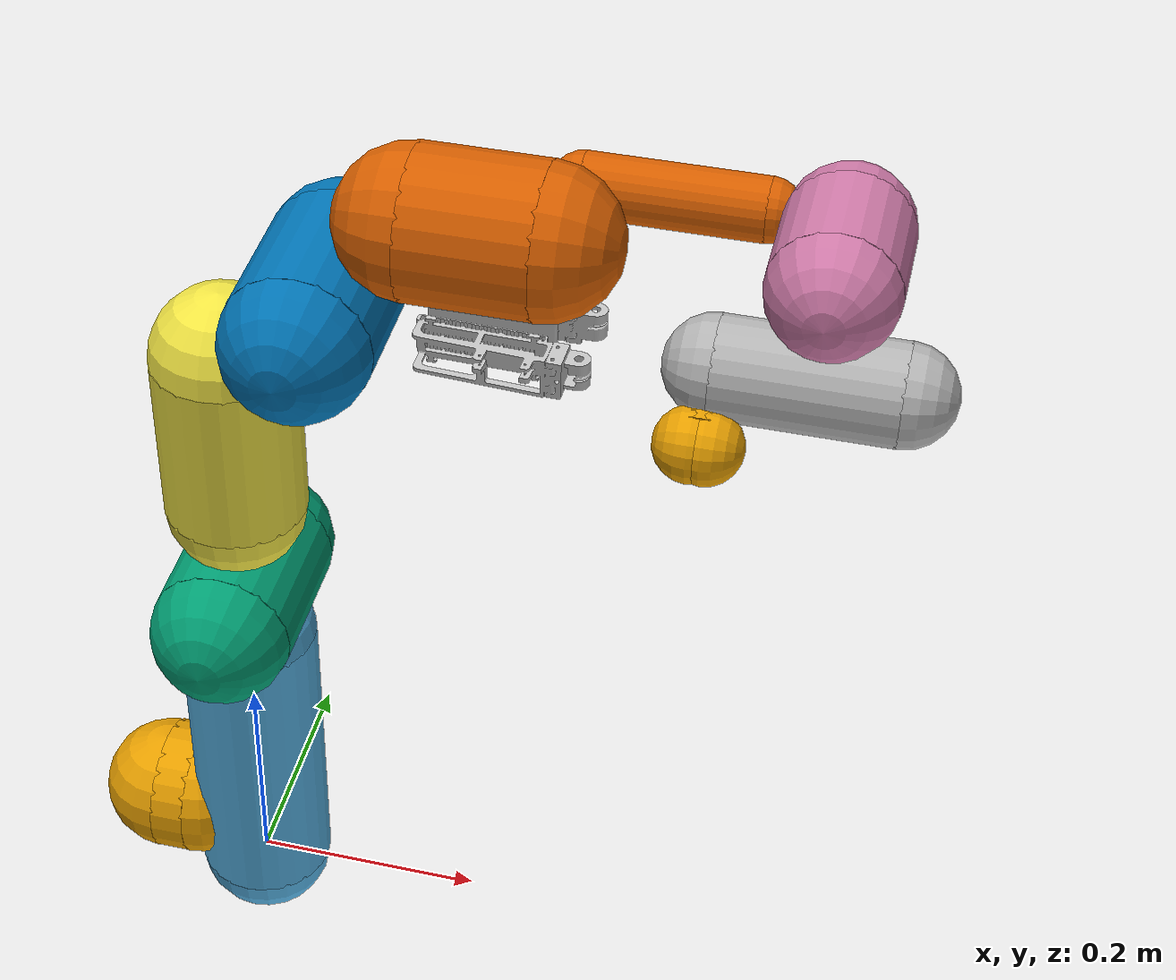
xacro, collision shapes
<?xml version="1.0" encoding="utf-8"?>
<robot xmlns:xacro="http://www.ros.org/wiki/xacro" name="franka_vf">
  <!-- Franka arm -->
  <xacro:include filename="$(find franka_description)/robots/panda_arm.xacro"/>
  <!-- Variable Friction Hand -->
  <xacro:include filename="$(find vf-hand_description)/robots/vf_hand.xacro"/>
  <xacro:panda_arm />
  <!-- Attach hand to the end of the arm -->
  <xacro:vf_hand rpy="0 0 0" connected_to="panda_link8"/>
</robot>

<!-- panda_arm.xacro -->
<robot xmlns:xacro="http://www.ros.org/wiki/xacro" name="panda">
  <!-- safety_distance: Minimum safety distance in [m] by which the collision volumes are expanded and which is enforced during robot motions -->
  <!-- arm_id: Namespace of the panda arm. Serves to differentiate between arms in case of multiple instances. -->
  <xacro:macro name="panda_arm" params="arm_id:='panda' description_pkg:='franka_description' connected_to:='' xyz:='0 0 0' rpy:='0 0 0' safety_distance:=0">
    <xacro:unless value="${not connected_to}">
      <joint name="${arm_id}_joint_${connected_to}" type="fixed">
        <parent link="${connected_to}"/>
        <child link="${arm_id}_link0"/>
        <origin rpy="${rpy}" xyz="${xyz}"/>
      </joint>
    </xacro:unless>
    <link name="${arm_id}_link0">
      <visual>
        <geometry>
          <mesh filename="package://${description_pkg}/meshes/visual/link0.dae"/>
        </geometry>
      </visual>
      <collision>
        <origin xyz="-0.075 0 0.06" rpy="0 ${pi/2} 0"/>
        <geometry>
          <cylinder radius="${0.06+safety_distance}" length="0.03" />
        </geometry>
      </collision>
      <collision>
        <origin xyz="-0.06 0 0.06" rpy="0 0 0"/>
        <geometry>
          <sphere radius="${0.06+safety_distance}" />
        </geometry>
      </collision>
      <collision>
        <origin xyz="-0.09 0 0.06" rpy="0 0 0"/>
        <geometry>
          <sphere radius="${0.06+safety_distance}" />
        </geometry>
      </collision>
    </link>
    <link name="${arm_id}_link1">
      <visual>
        <geometry>
          <mesh filename="package://${description_pkg}/meshes/visual/link1.dae"/>
        </geometry>
      </visual>
      <collision>
        <origin xyz="0 0 -0.1915" rpy="0 0 0"/>
        <geometry>
          <cylinder radius="${0.06+safety_distance}" length="0.2830" />
        </geometry>
      </collision>
      <collision>
        <origin xyz="0 0 -0.333" rpy="0 0 0"/>
        <geometry>
          <sphere radius="${0.06+safety_distance}" />
        </geometry>
      </collision>
      <collision>
        <origin xyz="0 0 -0.05" rpy="0 0 0"/>
        <geometry>
          <sphere radius="${0.06+safety_distance}" />
        </geometry>
      </collision>
    </link>
    <joint name="${arm_id}_joint1" type="revolute">
      <safety_controller k_position="100.0" k_velocity="40.0" soft_lower_limit="-2.8973" soft_upper_limit="2.8973"/>
      <origin rpy="0 0 0" xyz="0 0 0.333"/>
      <parent link="${arm_id}_link0"/>
      <child link="${arm_id}_link1"/>
      <axis xyz="0 0 1"/>
      <limit effort="87" lower="-2.8973" upper="2.8973" velocity="2.1750"/>
    </joint>
    <link name="${arm_id}_link2">
      <visual>
        <geometry>
          <mesh filename="package://${description_pkg}/meshes/visual/link2.dae"/>
        </geometry>
      </visual>
      <collision>
        <origin xyz="0 0 0" rpy="0 0 0"/>
        <geometry>
          <cylinder radius="${0.06+safety_distance}" length="0.12" />
        </geometry>
      </collision>
      <collision>
        <origin xyz="0 0 -0.06" rpy="0 0 0"/>
        <geometry>
          <sphere radius="${0.06+safety_distance}" />
        </geometry>
      </collision>
      <collision>
        <origin xyz="0 0 0.06" rpy="0 0 0"/>
        <geometry>
          <sphere radius="${0.06+safety_distance}" />
        </geometry>
      </collision>
    </link>
    <joint name="${arm_id}_joint2" type="revolute">
      <safety_controller k_position="100.0" k_velocity="40.0" soft_lower_limit="-1.7628" soft_upper_limit="1.7628"/>
      <origin rpy="${-pi/2} 0 0" xyz="0 0 0"/>
      <parent link="${arm_id}_link1"/>
      <child link="${arm_id}_link2"/>
      <axis xyz="0 0 1"/>
      <limit effort="87" lower="-1.7628" upper="1.7628" velocity="2.1750"/>
    </joint>
    <link name="${arm_id}_link3">
      <visual>
        <geometry>
          <mesh filename="package://${description_pkg}/meshes/visual/link3.dae"/>
        </geometry>
      </visual>
      <collision>
        <origin xyz="0 0 -0.145" rpy="0 0 0"/>
        <geometry>
          <cylinder radius="${0.06+safety_distance}" length="0.15" />
        </geometry>
      </collision>
      <collision>
        <origin xyz="0 0 -0.22" rpy="0 0 0"/>
        <geometry>
          <sphere radius="${0.06+safety_distance}" />
        </geometry>
      </collision>
      <collision>
        <origin xyz="0 0 -0.07" rpy="0 0 0"/>
        <geometry>
          <sphere radius="${0.06+safety_distance}" />
        </geometry>
      </collision>
    </link>
    <joint name="${arm_id}_joint3" type="revolute">
      <safety_controller k_position="100.0" k_velocity="40.0" soft_lower_limit="-2.8973" soft_upper_limit="2.8973"/>
      <origin rpy="${pi/2} 0 0" xyz="0 -0.316 0"/>
      <parent link="${arm_id}_link2"/>
      <child link="${arm_id}_link3"/>
      <axis xyz="0 0 1"/>
      <limit effort="87" lower="-2.8973" upper="2.8973" velocity="2.1750"/>
    </joint>
    <link name="${arm_id}_link4">
      <visual>
        <geometry>
          <mesh filename="package://${description_pkg}/meshes/visual/link4.dae"/>
        </geometry>
      </visual>
      <collision>
        <origin xyz="0 0 0" rpy="0 0 0"/>
        <geometry>
          <cylinder radius="${0.06+safety_distance}" length="0.12" />
        </geometry>
      </collision>
      <collision>
        <origin xyz="0 0 0.06" rpy="0 0 0"/>
        <geometry>
          <sphere radius="${0.06+safety_distance}" />
        </geometry>
      </collision>
      <collision>
        <origin xyz="0 0 -0.06" rpy="0 0 0"/>
        <geometry>
          <sphere radius="${0.06+safety_distance}" />
        </geometry>
      </collision>
    </link>
    <joint name="${arm_id}_joint4" type="revolute">
      <safety_controller k_position="100.0" k_velocity="40.0" soft_lower_limit="-3.0718" soft_upper_limit="-0.0698"/>
      <origin rpy="${pi/2} 0 0" xyz="0.0825 0 0"/>
      <parent link="${arm_id}_link3"/>
      <child link="${arm_id}_link4"/>
      <axis xyz="0 0 1"/>
      <limit effort="87" lower="-3.0718" upper="-0.0698" velocity="2.1750"/>
    </joint>
    <link name="${arm_id}_link5">
      <visual>
        <geometry>
          <mesh filename="package://${description_pkg}/meshes/visual/link5.dae"/>
        </geometry>
      </visual>
      <collision>
        <origin xyz="0 0 -0.26" rpy="0 0 0"/>
        <geometry>
          <cylinder radius="${0.06+safety_distance}" length="0.1" />
        </geometry>
      </collision>
      <collision>
        <origin xyz="0 0 -0.31" rpy="0 0 0"/>
        <geometry>
          <sphere radius="${0.06+safety_distance}" />
        </geometry>
      </collision>
      <collision>
        <origin xyz="0 0 -0.21" rpy="0 0 0"/>
        <geometry>
          <sphere radius="${0.06+safety_distance}" />
        </geometry>
      </collision>
      <collision>
        <origin xyz="0 0.08 -0.13" rpy="0 0 0"/>
        <geometry>
          <cylinder radius="${0.025+safety_distance}" length="0.14" />
        </geometry>
      </collision>
      <collision>
        <origin xyz="0 0.08 -0.06" rpy="0 0 0"/>
        <geometry>
          <sphere radius="${0.025+safety_distance}" />
        </geometry>
      </collision>
      <collision>
        <origin xyz="0 0.08 -0.20" rpy="0 0 0"/>
        <geometry>
          <sphere radius="${0.025+safety_distance}" />
        </geometry>
      </collision>

    </link>
    <joint name="${arm_id}_joint5" type="revolute">
      <safety_controller k_position="100.0" k_velocity="40.0" soft_lower_limit="-2.8973" soft_upper_limit="2.8973"/>
      <origin rpy="${-pi/2} 0 0" xyz="-0.0825 0.384 0"/>
      <parent link="${arm_id}_link4"/>
      <child link="${arm_id}_link5"/>
      <axis xyz="0 0 1"/>
      <limit effort="12" lower="-2.8973" upper="2.8973" velocity="2.6100"/>
    </joint>
    <link name="${arm_id}_link6">
      <visual>
        <geometry>
          <mesh filename="package://${description_pkg}/meshes/visual/link6.dae"/>
        </geometry>
      </visual>
      <collision>
        <origin xyz="0 0 -0.03" rpy="0 0 0"/>
        <geometry>
          <cylinder radius="${0.05+safety_distance}" length="0.08" />
        </geometry>
      </collision>
      <collision>
        <origin xyz="0 0 0.01" rpy="0 0 0"/>
        <geometry>
          <sphere radius="${0.05+safety_distance}" />
        </geometry>
      </collision>
      <collision>
        <origin xyz="0 0 -0.07" rpy="0 0 0"/>
        <geometry>
          <sphere radius="${0.05+safety_distance}" />
        </geometry>
      </collision>
    </link>
    <joint name="${arm_id}_joint6" type="revolute">
      <safety_controller k_position="100.0" k_velocity="40.0" soft_lower_limit="-0.0175" soft_upper_limit="3.7525"/>
      <origin rpy="${pi/2} 0 0" xyz="0 0 0"/>
      <parent link="${arm_id}_link5"/>
      <child link="${arm_id}_link6"/>
      <axis xyz="0 0 1"/>
      <limit effort="12" lower="-0.0175" upper="3.7525" velocity="2.6100"/>
    </joint>
    <link name="${arm_id}_link7">
      <visual>
        <geometry>
          <mesh filename="package://${description_pkg}/meshes/visual/link7.dae"/>
        </geometry>
      </visual>
      <collision>
        <origin xyz="0 0 0.01" rpy="0 0 0"/>
        <geometry>
          <cylinder radius="${0.04+safety_distance}" length="0.14" />
        </geometry>
      </collision>
      <collision>
        <origin xyz="0 0 0.08" rpy="0 0 0"/>
        <geometry>
          <sphere radius="${0.04+safety_distance}"  />
        </geometry>
      </collision>
      <collision>
        <origin xyz="0 0 -0.06" rpy="0 0 0"/>
        <geometry>
          <sphere radius="${0.04+safety_distance}"  />
        </geometry>
      </collision>
    </link>
    <joint name="${arm_id}_joint7" type="revolute">
      <safety_controller k_position="100.0" k_velocity="40.0" soft_lower_limit="-2.8973" soft_upper_limit="2.8973"/>
      <origin rpy="${pi/2} 0 0" xyz="0.088 0 0"/>
      <parent link="${arm_id}_link6"/>
      <child link="${arm_id}_link7"/>
      <axis xyz="0 0 1"/>
      <limit effort="12" lower="-2.8973" upper="2.8973" velocity="2.6100"/>
    </joint>
    <link name="${arm_id}_link8">
      <collision>
        <origin xyz="0.0424 0.0424 -0.0250" rpy="${pi} ${pi/2} ${pi/2}"/>
        <geometry>
          <cylinder radius="${0.03+safety_distance}"  length="0.01" />
        </geometry>
      </collision>
      <collision>
        <origin xyz="0.0424 0.0424 -0.02" rpy="0 0 0"/>
        <geometry>
          <sphere radius="${0.03+safety_distance}"  />
        </geometry>
      </collision>
      <collision>
        <origin xyz="0.0424 0.0424 -0.03" rpy="0 0 0"/>
        <geometry>
          <sphere radius="${0.03+safety_distance}"  />
        </geometry>
      </collision>
    </link>
    <joint name="${arm_id}_joint8" type="fixed">
      <origin rpy="0 0 0" xyz="0 0 0.107"/>
      <parent link="${arm_id}_link7"/>
      <child link="${arm_id}_link8"/>
    </joint>
  </xacro:macro>
</robot>

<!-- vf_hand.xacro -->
<robot xmlns:xacro="http://www.ros.org/wiki/xacro" name="vf_hand">
  <xacro:macro name="vf_hand" params=" connected_to:='' ns:='' xyz:='0 0 0' rpy:='0 0 0'">
    <xacro:unless value="${connected_to == ''}">
      <joint name="${ns}_hand_joint" type="fixed">
        <parent link="${connected_to}"/>
        <child link="base_link"/>
        <origin xyz="${xyz}" rpy="${rpy}"/>
      </joint>
    </xacro:unless>

  <!-- Collision properties for fingers -->
  <gazebo reference="L1">
    <mu1>10</mu1>
    <mu2>10</mu2>
    <kp>10000000</kp>
    <kd>1</kd>
    <minDepth>0.001</minDepth>
  </gazebo>
  <gazebo reference="L2">
    <mu1>10</mu1>
    <mu2>10</mu2>
    <kp>10000000</kp>
    <kd>1</kd>
    <minDepth>0.001</minDepth>
  </gazebo>

  <link
    name="base_link">
    <inertial>
      <origin
        xyz="6.6061E-06 6.4177E-05 0.027251"
        rpy="0 0 0" />
      <mass
        value="0.15337" />
      <inertia
        ixx="0.0001038"
        ixy="5.6961E-07"
        ixz="-6.9342E-13"
        iyy="7.4038E-05"
        iyz="-4.4165E-08"
        izz="0.00017386" />
    </inertial>
    <visual>
      <origin
        xyz="0 0 0"
        rpy="0 0 0" />
      <geometry>
        <mesh
          filename="package://vf-hand_description/meshes/base_link.STL" />
      </geometry>
      <material
        name="">
        <color
          rgba="0.75294 0.75294 0.75294 1" />
      </material>
    </visual>
  </link>

  <link
    name="L1">
    <inertial>
      <origin
        xyz="1.7149E-05 0.0014078 0.049755"
        rpy="0 0 0" />
      <mass
        value="0.037478" />
      <inertia
        ixx="3.7231E-05"
        ixy="4.835E-07"
        ixz="3.5543E-07"
        iyy="3.6319E-05"
        iyz="-3.9016E-06"
        izz="8.1669E-06" />
    </inertial>
    <visual>
      <origin
        xyz="0 0 0"
        rpy="0 0 0" />
      <geometry>
        <mesh
          filename="package://vf-hand_description/meshes/L1.STL" />
      </geometry>
      <material
        name="">
        <color
          rgba="0.75294 0.75294 0.75294 1" />
      </material>
    </visual>
    <collision>
      <origin
        xyz="0 0 0"
        rpy="0 0 0" />
      <geometry>
        <mesh
          filename="package://vf-hand_description/meshes/L1.STL" />
      </geometry>
    </collision>
  </link>

  <!-- right finger -->
  <joint
    name="J1"
    type="continuous">
    <origin
      xyz="0 -0.02985 0.06936"
      rpy="0 0 0" />
    <parent
      link="base_link" />
    <child
      link="L1" />
    <axis
      xyz="1 0 0" />
    <dynamics damping="0.01" friction="0.01"/>
    <limit
      lower="-0.8"
      upper="0.8"
      effort="1"
      velocity="0.5" />
      <hardwareInterface>EffortJointInterface</hardwareInterface>
  </joint>

  <link
    name="L2">
    <inertial>
      <origin
        xyz="-0.000917152694428269 0.00358803500603186 0.0496456329588647"
        rpy="0 0 0" />
      <mass
        value="0.0374781252555018" />
      <inertia
        ixx="3.72312944777091E-05"
        ixy="4.4542620900761E-07"
        ixz="-4.02118046472307E-07"
        iyy="3.68148926584893E-05"
        iyz="1.01465713209036E-06"
        izz="7.67152143751456E-06" />
    </inertial>
    <visual>
      <origin
        xyz="0 0 0"
        rpy="0 0 0" />
      <geometry>
        <mesh
          filename="package://vf-hand_description/meshes/L1.STL" />
      </geometry>
      <material
        name="">
        <color
          rgba="0.752941176470588 0.752941176470588 0.752941176470588 1" />
      </material>
    </visual>
    <collision>
      <origin
        xyz="0 0 0"
        rpy="0 0 0" />
      <geometry>
        <mesh
          filename="package://vf-hand_description/meshes/L1.STL" />
      </geometry>
    </collision>
  </link>

  <!-- left finger -->
  <joint
    name="J2"
    type="continuous">
    <origin
      xyz="0 0.02985 0.06936"
      rpy="0 0 3.1415" />
    <parent
      link="base_link" />
    <child
      link="L2" />
    <axis
      xyz="1 0 0" />
    <dynamics damping="0.01" friction="0.01"/>
    <limit
      lower="-0.8"
      upper="0.8"
      effort="1"
      velocity="0.5" />
      <hardwareInterface>EffortJointInterface</hardwareInterface>
  </joint>

  <gazebo reference="base_link">
  <material>Gazebo/Black</material>
  </gazebo>
  <gazebo reference="L1">
  <material>Gazebo/Red</material>
  </gazebo>
  <gazebo reference="L2">
  <material>Gazebo/Red</material>
  </gazebo>

  <transmission name="head_swivel_trans1">
    <type>transmission_interface/SimpleTransmission</type>
    <joint name="J1">
      <hardwareInterface>hardware_interface/EffortJointInterface</hardwareInterface>
    </joint>
    <actuator name="head_swivel_motor1">
      <hardwareInterface>hardware_interface/EffortJointInterface</hardwareInterface>
      <mechanicalReduction>1</mechanicalReduction>
    </actuator>
  </transmission>

  <transmission name="head_swivel_trans2">
    <type>transmission_interface/SimpleTransmission</type>
    <joint name="J2">
      <hardwareInterface>hardware_interface/EffortJointInterface</hardwareInterface>
    </joint>
    <actuator name="head_swivel_motor2">
      <mechanicalReduction>1</mechanicalReduction>
    </actuator>
  </transmission>

  <!-- for ros contollers -->
  <gazebo>
    <plugin name="gazebo_ros_control" filename="libgazebo_ros_control.so">
      <robotNamespace>/vf_hand</robotNamespace>
      <legacyModeNS>true</legacyModeNS>
      <robotSimType>gazebo_ros_control/DefaultRobotHWSim</robotSimType>
    </plugin>
  </gazebo>

  <!-- variable friction plugin -->
  <gazebo>
    <plugin name="friction_plugin" filename="libfriction_plugin.so"> </plugin>
  </gazebo>

  </xacro:macro>
</robot>
